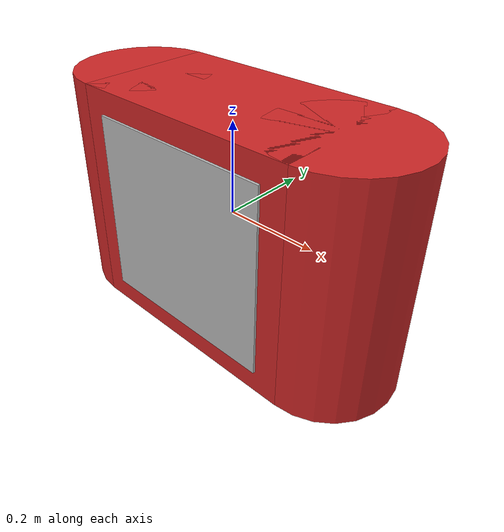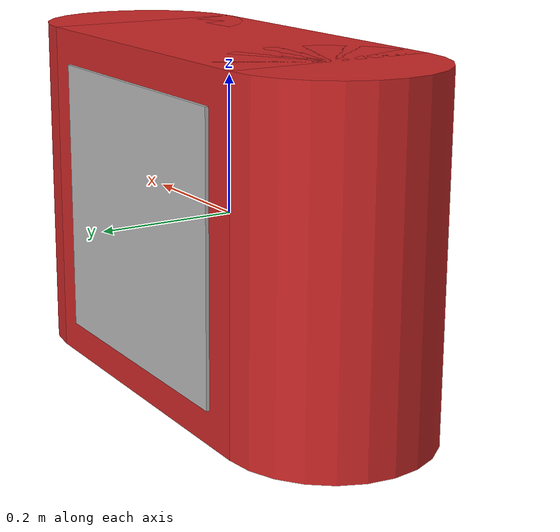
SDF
<?xml version='1.0'?>
<sdf version='1.5'>
<!--
     Written by Kristoffer Rakstad Solberg, Student
     Copyright (c) 2019 Manta AUV, Vortex NTNU.
     All rights reserved.
-->
  <model name='buoy_badge'>
    <pose> 0 0 0 0 0 0</pose>
    <self_collide> 0 </self_collide>
    <static>1</static>

    <link name='buoy_base'>
      <pose> 0 0 0 0 0 0</pose>
      <visual name='gate_mid_vis'>
        <geometry>
          <box>
            <size>0.5 0.3 0.5</size>
          </box>
        </geometry>
        <material>
          <script>
            <uri>file://media/materials/scripts/gazebo.material</uri>
            <name>Gazebo/Red</name>
          </script>
        </material>
      </visual>
      <collision name='buoy_collide'>
        <geometry>
          <box>
            <size>0.5 0.3 0.5</size>
          </box>
        </geometry>
      </collision>
    </link>

    <link name='buoy_side_left'>
      <pose> -0.25 0 0 0 0 0</pose>
      <visual name='gate_side_left_vis'>
        <geometry>
          <cylinder>
            <radius>0.15</radius>
            <length>0.5</length>
          </cylinder>
        </geometry>
        <material>
          <script>
            <uri>file://media/materials/scripts/gazebo.material</uri>
            <name>Gazebo/Red</name>
          </script>
        </material>
      </visual>
      <collision name='buoy_collide_side_left'>
        <geometry>
          <cylinder>
            <radius>0.15</radius>
            <length>0.5</length>
          </cylinder>
        </geometry>
      </collision>
    </link>

    <link name='buoy_side_right'>
      <pose> 0.25 0 0 0 0 0</pose>
      <visual name='gate_side_right_vis'>
        <geometry>
          <cylinder>
            <radius>0.15</radius>
            <length>0.5</length>
          </cylinder>
        </geometry>
        <material>
          <script>
            <uri>file://media/materials/scripts/gazebo.material</uri>
            <name>Gazebo/Red</name>
          </script>
        </material>
      </visual>
      <collision name='buoy_collide_side_right'>
        <geometry>
          <cylinder>
            <radius>0.15</radius>
            <length>0.5</length>
          </cylinder>
        </geometry>
      </collision>
    </link>

    <link name='box_badge'>
      <pose> 0 0.15 0 0 0 0</pose>
      <visual name='box_badge_vis'>
        <geometry>
          <box>
            <size>0.4 0.01 0.4</size>
          </box>
        </geometry>
        <material>
          <script>
            <uri>model://2018/buoy_badge/materials/scripts</uri>
            <uri>model://2018/buoy_badge/materials/textures</uri>
            <name>TexturedShape/badge</name>
          </script>
        </material>
      </visual>
    </link>

    <link name='box_badge2'>
      <pose> 0 -0.15 0 0 0 0</pose>
      <visual name='box_badge2_vis'>
        <geometry>
          <box>
            <size>0.4 0.01 0.4</size>
          </box>
        </geometry>
        <material>
          <script>
            <uri>model://2018/buoy_badge/materials/scripts</uri>
            <uri>model://2018/buoy_badge/materials/textures</uri>
            <name>TexturedShape/badge</name>
          </script>
        </material>
      </visual>
    </link>

  </model>
</sdf>
